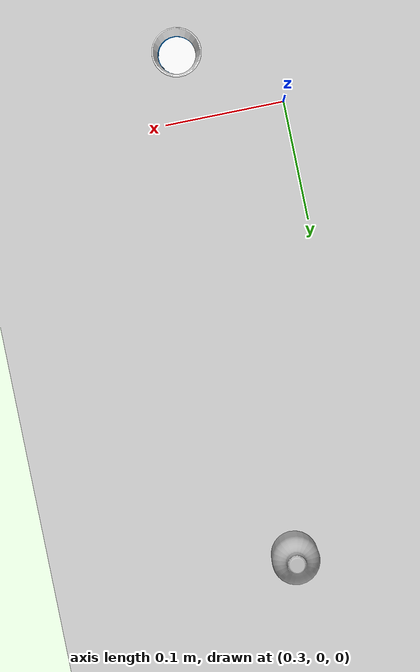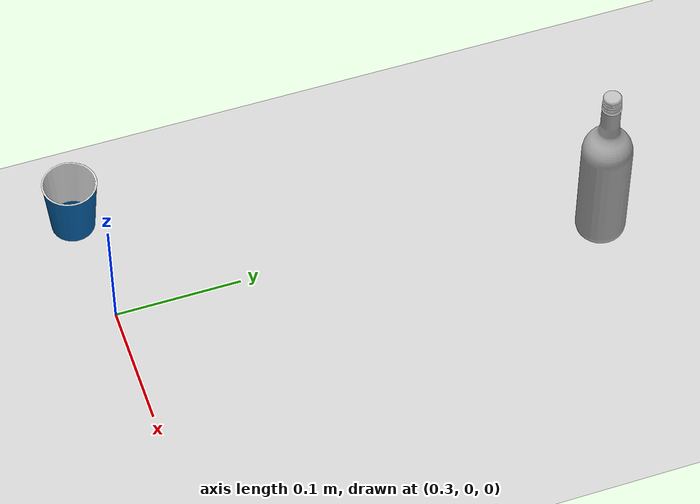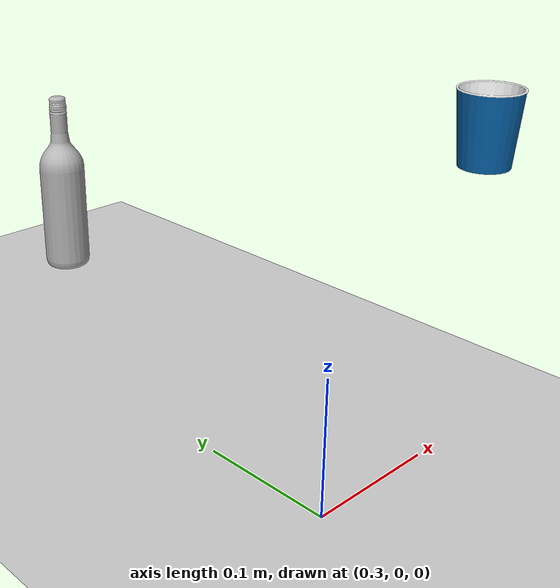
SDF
<sdf version="1.4">
  <world name="default">
    <!-- A global light source -->
    <include>
      <uri>model://sun</uri>
    </include>

    <!-- A ground plane -->
    <include>
      <uri>model://ground_plane</uri>
    </include>

    <physics type="ode">
      <real_time_update_rate>1000.0</real_time_update_rate>
      <max_step_size>0.001</max_step_size>
      <real_time_factor>1</real_time_factor>
      <ode>
        <solver>
          <type>quick</type>
          <iters>150</iters>
          <precon_iters>0</precon_iters>
          <sor>1.400000</sor>
          <use_dynamic_moi_rescaling>1</use_dynamic_moi_rescaling>
        </solver>
        <constraints>
          <cfm>0.00001</cfm>
          <erp>0.2</erp>
          <contact_max_correcting_vel>2000.000000</contact_max_correcting_vel>
          <contact_surface_layer>0.01000</contact_surface_layer>
        </constraints>
      </ode>
    </physics>

    <scene>
      <ambient>0.4 0.4 0.4 1</ambient>
      <background>0.7 0.7 0.7 1</background>
      <shadows>true</shadows>
    </scene>

    <gui fullscreen='0'>
      <camera name='user_camera'>
        <pose> 2.0 -2.0 1.2 0.0 0.275643 2.356190 </pose>
        <view_controller>orbit</view_controller>
      </camera>
    </gui>

    <light name='user_directional_light_0' type='directional'>
      <pose frame=''>-1.161098 -0.156670 0.829320 0.058595 -1.295085 0.040307</pose>
      <diffuse>0.5 0.5 0.5 1</diffuse>
      <specular>0.1 0.1 0.1 1</specular>
      <direction>0.1 0.1 -0.9</direction>
      <attenuation>
        <range>20</range>
        <constant>0.5</constant>
        <linear>0.01</linear>
        <quadratic>0.001</quadratic>
      </attenuation>
      <cast_shadows>1</cast_shadows>
    </light>

    <model name='waterbottle'>
      <link name='link'>
        <pose frame=''>0 0 0.08 0 -0 0</pose>
        <inertial>
          <mass>0.01</mass>
          <inertia>
            <ixx>4.7583e-05</ixx>
            <ixy>0</ixy>
            <ixz>0</ixz>
            <iyy>4.7583e-05</iyy>
            <iyz>0</iyz>
            <izz>3.125e-06</izz>
          </inertia>
        </inertial>
        <collision name='collision'>
	  <pose>0 0 -0.075 0 0 0</pose>
          <geometry>
            <cylinder>
              <radius>0.015</radius>
              <length>0.18</length>
            </cylinder>
          </geometry>
          <surface>
            <friction>
              <ode>
                <mu>1e+06</mu>
                <mu2>10000</mu2>
              </ode>
              <torsional>
                <ode/>
              </torsional>
            </friction>
            <contact>
              <ode>
                <kp>1e+06</kp>
                <kd>100</kd>
                <max_vel>1</max_vel>
                <min_depth>0.002</min_depth>
              </ode>
            </contact>
            <bounce/>
          </surface>
          <max_contacts>10</max_contacts>
        </collision>
        <visual name='visual'>
	  <pose>-0.00 -0.00 -0.15 0 0 0</pose>
          <geometry>
            <mesh>
              <uri>model://room1/bottle2/meshes/model.dae</uri>
              <scale>0.02 0.02 0.02</scale>
            </mesh>
          </geometry>
        </visual>
        <self_collide>0</self_collide>
        <kinematic>0</kinematic>
        <gravity>1</gravity>
      </link>
      <pose frame=''>0.367306 0.367306 0.105 0 -0 0</pose>
    </model>

    <model name='papercup'>
      <link name='link'>
        <inertial>
          <mass>0.01</mass>
          <inertia>
            <ixx>4.7583e-05</ixx>
            <ixy>0</ixy>
            <ixz>0</ixz>
            <iyy>4.7583e-05</iyy>
            <iyz>0</iyz>
            <izz>3.125e-06</izz>
          </inertia>
        </inertial>
        <collision name='collision'>
          <pose>0.01 -0.039 0.022 0 0 0</pose>
          <geometry>
            <cylinder>
              <radius>0.015</radius>
              <length>0.045</length>
            </cylinder>
          </geometry>
          <surface>
            <friction>
              <ode>
                <mu>1e+06</mu>
                <mu2>10000</mu2>
              </ode>
              <torsional>
                <ode/>
              </torsional>
            </friction>
            <contact>
              <ode>
                <kp>1e+06</kp>
                <kd>100</kd>
                <max_vel>1</max_vel>
                <min_depth>0.002</min_depth>
              </ode>
            </contact>
            <bounce/>
          </surface>
          <max_contacts>10</max_contacts>
        </collision>
        <visual name='visual'>
          <geometry>
            <mesh>
              <uri>model://room1/papercup/meshes/papercup.dae</uri>
              <scale>0.17 0.17 0.17</scale>
            </mesh>
          </geometry>
        </visual>
        <self_collide>0</self_collide>
        <kinematic>0</kinematic>
        <gravity>1</gravity>
      </link>
      <pose frame=''>0.367306 0.0 0.222 0 -0 0</pose>
      <static>1</static>
    </model>

  </world>
</sdf>
